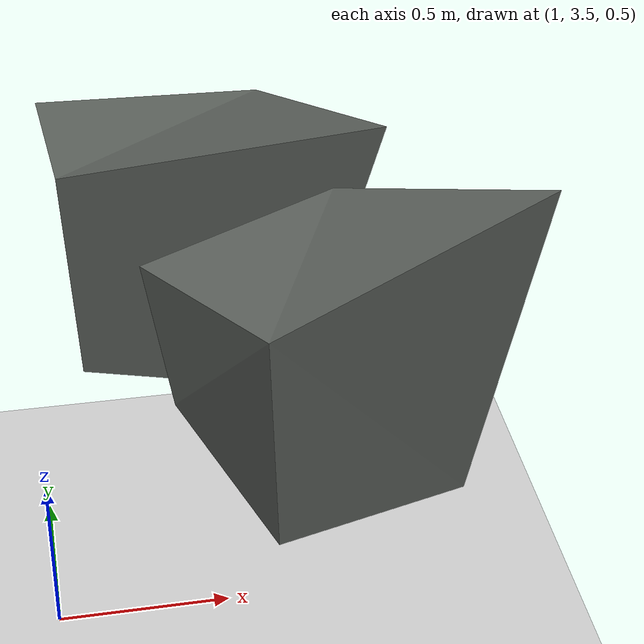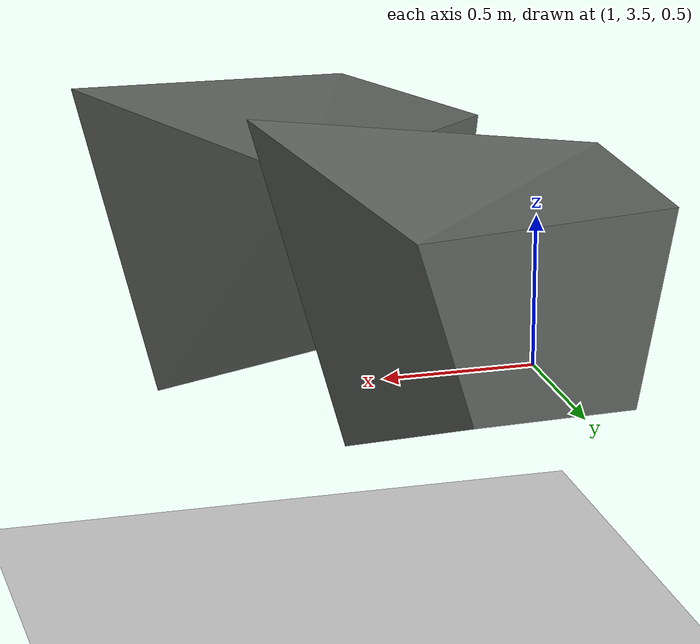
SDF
<?xml version="1.0"?>
<sdf version='1.6'>
  <world name='empty_rocks'>
    <!-- A global light source -->
    <include>
      <uri>model://sun</uri>
    </include>

    <!-- A ground plane -->
    <include>
      <uri>model://ground_plane</uri>
    </include>

    <physics name='default_physics' default='0' type='ode'>
      <max_step_size>0.01</max_step_size>
      <real_time_factor>1</real_time_factor>
      <real_time_update_rate>100</real_time_update_rate>
    </physics>

    <!-- No shadows -->
    <scene>
      <ambient>0.4 0.4 0.4 1</ambient>
      <background>0.7 0.7 0.7 1</background>
      <shadows>0</shadows>
    </scene>

    <gui fullscreen='0'>
      <camera name='user_camera'>
        <pose frame=''>7.55281 -2.00347 4.25994 -0 0.56764 2.3882</pose>
        <view_controller>orbit</view_controller>
        <projection_type>perspective</projection_type>
      </camera>
    </gui>

    <!-- A rock -->
    <model name="rock_1">
      <pose>0.79 3.37 0 0 0 0</pose>
      <include>
        <uri>model://rock</uri>
      </include>
    </model>

    <!-- Another rock-->
    <model name="rock_2">
      <pose>1.8 2.4 0 0 0 0.5</pose>
      <include>
        <uri>model://rock</uri>
      </include>
    </model>

  </world>
</sdf>

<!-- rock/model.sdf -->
<sdf version='1.6'>
  <model name='rock'>
    <link name='link_0'>
      <pose frame=''>-0 0 0 0 -0 0</pose>
      <gravity>0</gravity>
      <self_collide>0</self_collide>
      <kinematic>0</kinematic>
      <enable_wind>0</enable_wind>
      <visual name='visual'>
        <pose frame=''>0 0 0 0 -0 0</pose>
        <geometry>
          <mesh>
            <uri>model://rock/meshes/rock.dae</uri>
            <scale>1 1 1</scale>
          </mesh>
        </geometry>
        <material>
          <lighting>1</lighting>
          <ambient>0.36 0.38 0.36 1</ambient>
          <diffuse>0.36 0.38 0.36 1</diffuse>
          <specular>0.01 0.01 0.01 1</specular>
          <emissive>0 0 0 1</emissive>
        </material>
        <transparency>0</transparency>
        <cast_shadows>1</cast_shadows>
      </visual>
      <collision name='collision'>
        <laser_retro>0</laser_retro>
        <max_contacts>10</max_contacts>
        <pose frame=''>0 0 0 0 -0 0</pose>
        <geometry>
          <mesh>
            <uri>model://rock/meshes/rock.dae</uri>
            <scale>1 1 1</scale>
          </mesh>
        </geometry>
      </collision>
    </link>
    <static>1</static>
    <allow_auto_disable>1</allow_auto_disable>
  </model>
</sdf>
